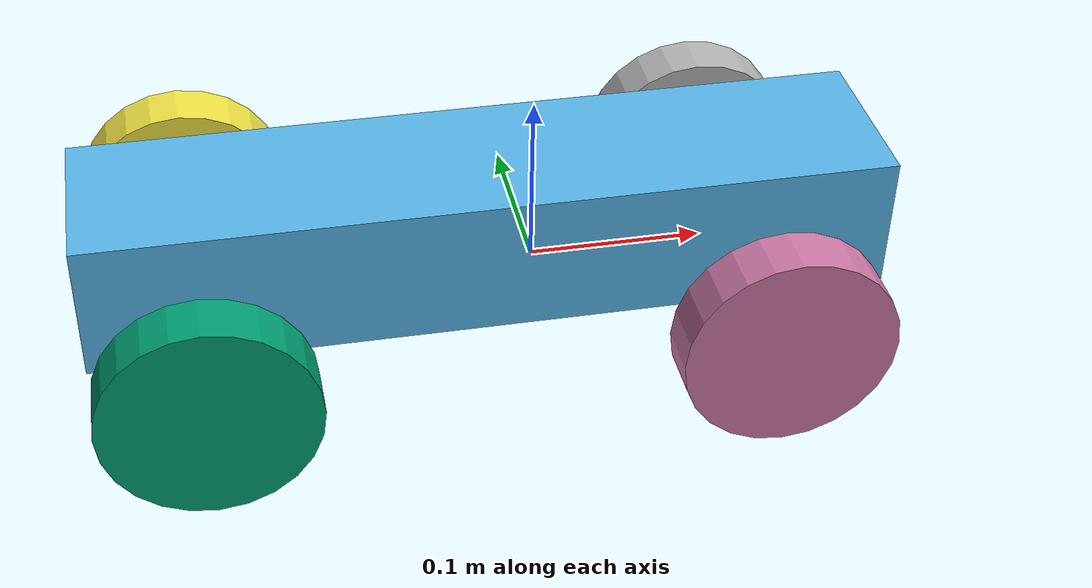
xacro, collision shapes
<?xml version="1.0"?>
<robot xmlns:xacro="http://www.ros.org/wiki/xacro">

    <xacro:property name="chassis_mass" value="3.0"/>
    <xacro:property name="wheel_mass" value="0.2"/>
    <xacro:property name="steering_mass" value="0.1"/>

    <xacro:property name="wheel_separation_width" value="0.2"/>
    <xacro:property name="wheel_base_length" value="0.312"/>

    <link name="base_footprint"/>

    <joint name="base_joint" type="fixed">
        <parent link="base_footprint"/>
        <child link="base_link"/>
        <origin xyz="0 0 0" rpy="0 0 0"/>
    </joint>

    <link name="base_link">
        <visual>
            <origin xyz="0 0 -0.0115" rpy="-0.018 0 -1.5707"/>
            <geometry>
                <mesh filename="package://rover/meshes/MainBody.dae"/>
            </geometry>
        </visual>
        <collision>
            <origin xyz="-0.03 0 0.03" rpy="0 0 0"/>
            <geometry>
                <box size=".45 .1 .08"/>
            </geometry>
        </collision>
        <inertial>
            <mass value="${chassis_mass}"/>
            <inertia ixx="0.0054" ixy="0" ixz="0" iyy="0.0252" iyz="0" izz="0.0252"/>
        </inertial>
    </link>

    <xacro:macro name="wheel" params="prefix parent x_pos y_pos flip_visual">
        <link name="${prefix}_wheel">
            <visual>
                <origin xyz="0 -0.02 0" rpy="0 0 ${pi}"/>
                <geometry>
                    <mesh filename="package://rover/meshes/Wheel.dae"/>
                </geometry>
            </visual>
            <collision>
                <origin xyz="0 0 0" rpy="-1.5707 0 0"/>
                <geometry>
                    <cylinder length="0.03" radius="0.06"/>
                </geometry>
            </collision>
            <inertial>
                <mass value="${wheel_mass}"/>
                <inertia ixx="0.00024" ixy="0" ixz="0" iyy="0.00036" iyz="0" izz="0.00024"/>
            </inertial>
        </link>

        <joint name="${prefix}_wheel_joint" type="revolute">
            <parent link="${parent}"/>
            <child link="${prefix}_wheel"/>
            <origin xyz="${x_pos} ${y_pos} 0" rpy="0 0 0"/>
            <axis xyz="0 1 0"/>
            <limit lower="-1e16" upper="1e16" effort="100" velocity="20"/>
        </joint>
    </xacro:macro>

    <xacro:macro name="steering_link" params="prefix y_pos">
        <link name="${prefix}_steering">
            <inertial>
                <mass value="${steering_mass}"/>
                <inertia ixx="0.0001" ixy="0" ixz="0" iyy="0.0001" iyz="0" izz="0.0001"/>
            </inertial>
        </link>

        <joint name="${prefix}_steering_joint" type="revolute">
            <parent link="base_link"/>
            <child link="${prefix}_steering"/>
            <origin xyz="0.120 ${y_pos} 0" rpy="0 0 0"/>
            <axis xyz="0 0 1"/>
            <limit lower="-0.52" upper="0.52" effort="1e6" velocity="10"/>
        </joint>
    </xacro:macro>

    <xacro:wheel prefix="rear_right" parent="base_link" x_pos="-0.192" y_pos="-0.1" flip_visual="false"/>
    <xacro:wheel prefix="rear_left" parent="base_link" x_pos="-0.192" y_pos="0.1" flip_visual="false"/>

    <xacro:steering_link prefix="front_right" y_pos="-0.1"/>
    <xacro:steering_link prefix="front_left" y_pos="0.1"/>

    <xacro:wheel prefix="front_right" parent="front_right_steering" x_pos="0" y_pos="0" flip_visual="false"/>
    <xacro:wheel prefix="front_left" parent="front_left_steering" x_pos="0" y_pos="0" flip_visual="false"/>

</robot>
